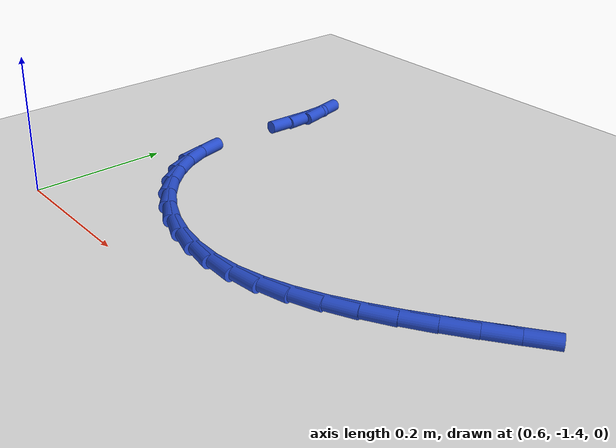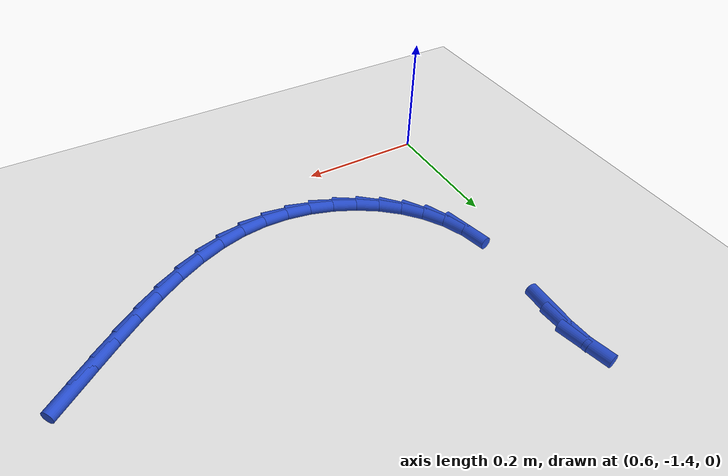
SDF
<sdf version="1.6">
 <world name="default">
  <model name="ground_plane">
   <static>1</static>
   <link name="link">
    <collision name="collision">
     <geometry><plane><normal>0 0 1</normal><size>100 100</size></plane></geometry>
     <surface><friction><ode><mu>100</mu><mu2>50</mu2></ode></friction></surface>
    </collision>
    <visual name="visual">
     <cast_shadows>0</cast_shadows>
     <geometry><plane><normal>0 0 1</normal><size>100 100</size></plane></geometry>
     <material>
      <script><uri>file://media/materials/scripts/gazebo.material</uri><name>Gazebo/WhiteGlow</name></script>
     </material>
    </visual>
   </link>
  </model>
  <model name="line">
   <link name="link_200">
    <pose>1.2586800071362332 -1.1515573629516835 0.01 0 1.57 0.6476559600410607</pose>
    <collision name="collision">
     <geometry><cylinder><radius>0.01</radius><length>0.08</length></cylinder></geometry>
    </collision>
    <visual name="visual">
     <material>
      <script><name>Gazebo/Blue</name><uri>file://media/materials/scripts/gazebo.material</uri></script>
     </material>
     <geometry><cylinder><radius>0.01</radius><length>0.08</length></cylinder></geometry>
    </visual>
   </link>
   <link name="link_201">
    <pose>1.2242096768410728 -1.1776345913132114 0.01 0 1.57 0.639488419759193</pose>
    <collision name="collision">
     <geometry><cylinder><radius>0.01</radius><length>0.08</length></cylinder></geometry>
    </collision>
    <visual name="visual">
     <material>
      <script><name>Gazebo/Blue</name><uri>file://media/materials/scripts/gazebo.material</uri></script>
     </material>
     <geometry><cylinder><radius>0.01</radius><length>0.08</length></cylinder></geometry>
    </visual>
   </link>
   <link name="link_202">
    <pose>1.1888436971057155 -1.2039380016943115 0.01 0 1.57 0.6174496848925585</pose>
    <collision name="collision">
     <geometry><cylinder><radius>0.01</radius><length>0.08</length></cylinder></geometry>
    </collision>
    <visual name="visual">
     <material>
      <script><name>Gazebo/Blue</name><uri>file://media/materials/scripts/gazebo.material</uri></script>
     </material>
     <geometry><cylinder><radius>0.01</radius><length>0.08</length></cylinder></geometry>
    </visual>
   </link>
   <link name="link_203">
    <pose>1.152664534144507 -1.2296275905656844 0.01 0 1.57 0.581014901392484</pose>
    <collision name="collision">
     <geometry><cylinder><radius>0.01</radius><length>0.08</length></cylinder></geometry>
    </collision>
    <visual name="visual">
     <material>
      <script><name>Gazebo/Blue</name><uri>file://media/materials/scripts/gazebo.material</uri></script>
     </material>
     <geometry><cylinder><radius>0.01</radius><length>0.08</length></cylinder></geometry>
    </visual>
   </link>
   <link name="link_204">
    <pose>1.115754654171789 -1.25386335439803 0.01 0 1.57 0.5287302709458082</pose>
    <collision name="collision">
     <geometry><cylinder><radius>0.01</radius><length>0.08</length></cylinder></geometry>
    </collision>
    <visual name="visual">
     <material>
      <script><name>Gazebo/Blue</name><uri>file://media/materials/scripts/gazebo.material</uri></script>
     </material>
     <geometry><cylinder><radius>0.01</radius><length>0.08</length></cylinder></geometry>
    </visual>
   </link>
   <link name="link_205">
    <pose>1.0781965234019086 -1.2758052896620478 0.01 0 1.57 0.4583064990737504</pose>
    <collision name="collision">
     <geometry><cylinder><radius>0.01</radius><length>0.08</length></cylinder></geometry>
    </collision>
    <visual name="visual">
     <material>
      <script><name>Gazebo/Blue</name><uri>file://media/materials/scripts/gazebo.material</uri></script>
     </material>
     <geometry><cylinder><radius>0.01</radius><length>0.08</length></cylinder></geometry>
    </visual>
   </link>
   <link name="link_206">
    <pose>1.0400726080492082 -1.2946133928284382 0.01 0 1.57 0.3668428113443553</pose>
    <collision name="collision">
     <geometry><cylinder><radius>0.01</radius><length>0.08</length></cylinder></geometry>
    </collision>
    <visual name="visual">
     <material>
      <script><name>Gazebo/Blue</name><uri>file://media/materials/scripts/gazebo.material</uri></script>
     </material>
     <geometry><cylinder><radius>0.01</radius><length>0.08</length></cylinder></geometry>
    </visual>
   </link>
   <link name="link_207">
    <pose>1.0014653743280317 -1.3094476603679015 0.01 0 1.57 0.25144415409866594</pose>
    <collision name="collision">
     <geometry><cylinder><radius>0.01</radius><length>0.08</length></cylinder></geometry>
    </collision>
    <visual name="visual">
     <material>
      <script><name>Gazebo/Blue</name><uri>file://media/materials/scripts/gazebo.material</uri></script>
     </material>
     <geometry><cylinder><radius>0.01</radius><length>0.08</length></cylinder></geometry>
    </visual>
   </link>
   <link name="link_208">
    <pose>0.9624572884527236 -1.3194680887511376 0.01 0 1.57 0.11247978256675421</pose>
    <collision name="collision">
     <geometry><cylinder><radius>0.01</radius><length>0.08</length></cylinder></geometry>
    </collision>
    <visual name="visual">
     <material>
      <script><name>Gazebo/Blue</name><uri>file://media/materials/scripts/gazebo.material</uri></script>
     </material>
     <geometry><cylinder><radius>0.01</radius><length>0.08</length></cylinder></geometry>
    </visual>
   </link>
   <link name="link_209">
    <pose>0.9231648177212538 -1.3239064306473953 0.01 0 1.57 -0.030448314027233733</pose>
    <collision name="collision">
     <geometry><cylinder><radius>0.01</radius><length>0.08</length></cylinder></geometry>
    </collision>
    <visual name="visual">
     <material>
      <script><name>Gazebo/Blue</name><uri>file://media/materials/scripts/gazebo.material</uri></script>
     </material>
     <geometry><cylinder><radius>0.01</radius><length>0.08</length></cylinder></geometry>
    </visual>
   </link>
   <link name="link_210">
    <pose>0.8840458403760318 -1.3227149555125404 0.01 0 1.57 -0.16695877844045784</pose>
    <collision name="collision">
     <geometry><cylinder><radius>0.01</radius><length>0.08</length></cylinder></geometry>
    </collision>
    <visual name="visual">
     <material>
      <script><name>Gazebo/Blue</name><uri>file://media/materials/scripts/gazebo.material</uri></script>
     </material>
     <geometry><cylinder><radius>0.01</radius><length>0.08</length></cylinder></geometry>
    </visual>
   </link>
   <link name="link_211">
    <pose>0.8457553622529385 -1.3162619526826311 0.01 0 1.57 -0.2989137904008241</pose>
    <collision name="collision">
     <geometry><cylinder><radius>0.01</radius><length>0.08</length></cylinder></geometry>
    </collision>
    <visual name="visual">
     <material>
      <script><name>Gazebo/Blue</name><uri>file://media/materials/scripts/gazebo.material</uri></script>
     </material>
     <geometry><cylinder><radius>0.01</radius><length>0.08</length></cylinder></geometry>
    </visual>
   </link>
   <link name="link_212">
    <pose>0.808950775756402 -1.3049207481298635 0.01 0 1.57 -0.42903843104491357</pose>
    <collision name="collision">
     <geometry><cylinder><radius>0.01</radius><length>0.08</length></cylinder></geometry>
    </collision>
    <visual name="visual">
     <material>
      <script><name>Gazebo/Blue</name><uri>file://media/materials/scripts/gazebo.material</uri></script>
     </material>
     <geometry><cylinder><radius>0.01</radius><length>0.08</length></cylinder></geometry>
    </visual>
   </link>
   <link name="link_213">
    <pose>0.7742894732908486 -1.2890646678264306 0.01 0 1.57 -0.5605096026205157</pose>
    <collision name="collision">
     <geometry><cylinder><radius>0.01</radius><length>0.08</length></cylinder></geometry>
    </collision>
    <visual name="visual">
     <material>
      <script><name>Gazebo/Blue</name><uri>file://media/materials/scripts/gazebo.material</uri></script>
     </material>
     <geometry><cylinder><radius>0.01</radius><length>0.08</length></cylinder></geometry>
    </visual>
   </link>
   <link name="link_214">
    <pose>0.7424288472607082 -1.2690670377445288 0.01 0 1.57 -0.6967515776218871</pose>
    <collision name="collision">
     <geometry><cylinder><radius>0.01</radius><length>0.08</length></cylinder></geometry>
    </collision>
    <visual name="visual">
     <material>
      <script><name>Gazebo/Blue</name><uri>file://media/materials/scripts/gazebo.material</uri></script>
     </material>
     <geometry><cylinder><radius>0.01</radius><length>0.08</length></cylinder></geometry>
    </visual>
   </link>
   <link name="link_215">
    <pose>0.7140262900704074 -1.2453011838563528 0.01 0 1.57 -0.8411958890635383</pose>
    <collision name="collision">
     <geometry><cylinder><radius>0.01</radius><length>0.08</length></cylinder></geometry>
    </collision>
    <visual name="visual">
     <material>
      <script><name>Gazebo/Blue</name><uri>file://media/materials/scripts/gazebo.material</uri></script>
     </material>
     <geometry><cylinder><radius>0.01</radius><length>0.08</length></cylinder></geometry>
    </visual>
   </link>
   <link name="link_216">
    <pose>0.689739194124374 -1.2181404321340976 0.01 0 1.57 -0.9968534864892081</pose>
    <collision name="collision">
     <geometry><cylinder><radius>0.01</radius><length>0.08</length></cylinder></geometry>
    </collision>
    <visual name="visual">
     <material>
      <script><name>Gazebo/Blue</name><uri>file://media/materials/scripts/gazebo.material</uri></script>
     </material>
     <geometry><cylinder><radius>0.01</radius><length>0.08</length></cylinder></geometry>
    </visual>
   </link>
   <link name="link_217">
    <pose>0.6702249518270353 -1.1879581085499575 0.01 0 1.57 -1.1655507098480133</pose>
    <collision name="collision">
     <geometry><cylinder><radius>0.01</radius><length>0.08</length></cylinder></geometry>
    </collision>
    <visual name="visual">
     <material>
      <script><name>Gazebo/Blue</name><uri>file://media/materials/scripts/gazebo.material</uri></script>
     </material>
     <geometry><cylinder><radius>0.01</radius><length>0.08</length></cylinder></geometry>
    </visual>
   </link>
   <link name="link_218">
    <pose>0.6561409555828195 -1.155127539076128 0.01 0 1.57 -1.3433184605034907</pose>
    <collision name="collision">
     <geometry><cylinder><radius>0.01</radius><length>0.08</length></cylinder></geometry>
    </collision>
    <visual name="visual">
     <material>
      <script><name>Gazebo/Blue</name><uri>file://media/materials/scripts/gazebo.material</uri></script>
     </material>
     <geometry><cylinder><radius>0.01</radius><length>0.08</length></cylinder></geometry>
    </visual>
   </link>
   <link name="link_223">
    <pose>0.6505276112507592 -0.9721125642637347 0.01 0 1.57 1.538841428256242</pose>
    <collision name="collision">
     <geometry><cylinder><radius>0.01</radius><length>0.08</length></cylinder></geometry>
    </collision>
    <visual name="visual">
     <material>
      <script><name>Gazebo/Blue</name><uri>file://media/materials/scripts/gazebo.material</uri></script>
     </material>
     <geometry><cylinder><radius>0.01</radius><length>0.08</length></cylinder></geometry>
    </visual>
   </link>
   <link name="link_224">
    <pose>0.6516383833268296 -0.9373637768925462 0.01 0 1.57 -1.5085803527060444</pose>
    <collision name="collision">
     <geometry><cylinder><radius>0.01</radius><length>0.08</length></cylinder></geometry>
    </collision>
    <visual name="visual">
     <material>
      <script><name>Gazebo/Blue</name><uri>file://media/materials/scripts/gazebo.material</uri></script>
     </material>
     <geometry><cylinder><radius>0.01</radius><length>0.08</length></cylinder></geometry>
    </visual>
   </link>
   <link name="link_225">
    <pose>0.6496324951311143 -0.9051646607024657 0.01 0 1.57 -1.3398331083887565</pose>
    <collision name="collision">
     <geometry><cylinder><radius>0.01</radius><length>0.08</length></cylinder></geometry>
    </collision>
    <visual name="visual">
     <material>
      <script><name>Gazebo/Blue</name><uri>file://media/materials/scripts/gazebo.material</uri></script>
     </material>
     <geometry><cylinder><radius>0.01</radius><length>0.08</length></cylinder></geometry>
    </visual>
   </link>
  </model>
 </world>
</sdf>
